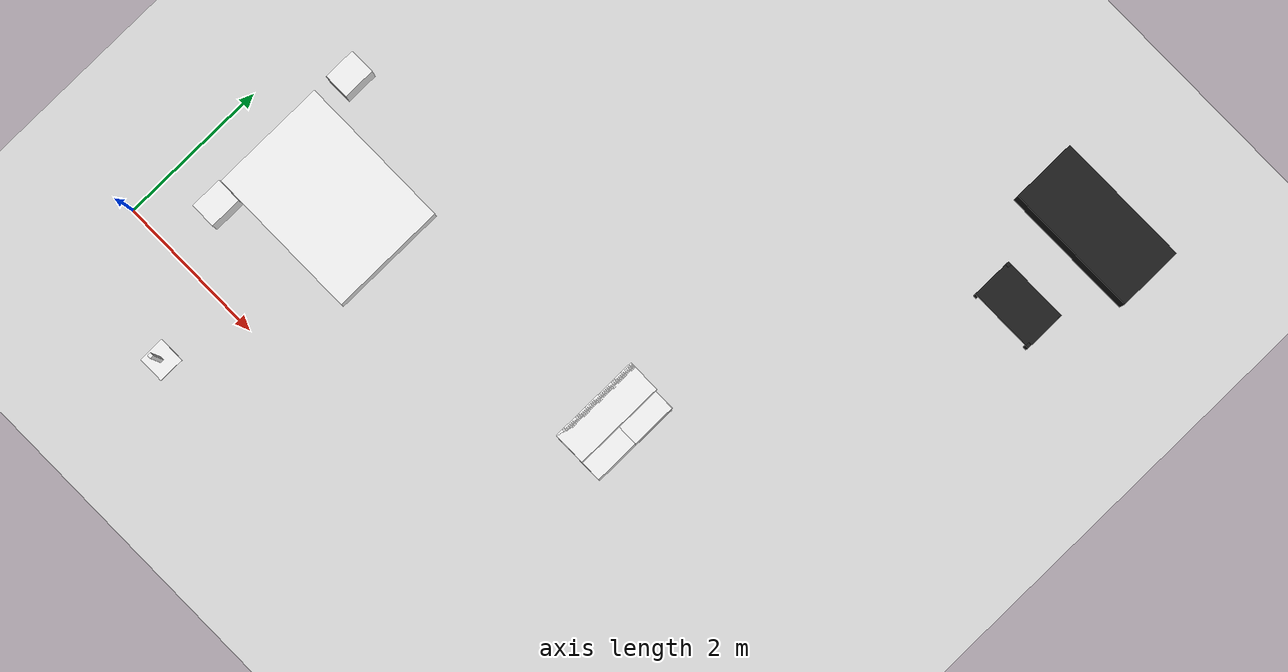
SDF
<sdf version="1.6">
 <world name="rgo2015">
  <light name="sun" type="directional">
   <direction>0.5 0.1 -0.9</direction>
   <pose>0 0 10 0 0 0</pose>
   <specular>0.2 0.2 0.2 1</specular>
   <diffuse>0.8 0.8 0.8 1</diffuse>
   <attenuation>
    <range>1000</range>
    <quadratic>0.001</quadratic>
    <constant>0.9</constant>
    <linear>0.01</linear>
   </attenuation>
  </light>
  <model name="initial_pose_door_A" type="waypoint"><static>true</static></model>
  <model name="initial_pose_door_B" type="waypoint">
   <pose>2.0 8.9 0 0 0 -1.57</pose>
   <static>true</static>
  </model>
  <model name="initial_pose" type="waypoint"><static>true</static></model>
  <model name="entry_point" type="waypoint"><pose>1.897 4.295 0 0 0 0</pose><static>true</static></model>
  <model name="exit" type="waypoint"><pose>-1.48 -0.031 0 0 0 3.1415</pose><static>true</static></model>
  <model name="rips1" type="waypoint"><pose>4.0 0.5 0 0 0 -1.57</pose><static>true</static></model>
  <model name="rips2" type="waypoint"><pose>4.0 2.5 0 0 0 -1.57</pose><static>true</static></model>
  <model name="exit_1_rips" type="waypoint"><pose>2.0 10.5 0 0 0 1.57</pose><static>true</static></model>
  <model name="exit_2_rips" type="waypoint"><pose>2.0 8.0 0 0 0 1.57</pose><static>true</static></model>
  <model name="exit_3_rips" type="waypoint"><pose>3.0 3.0 0 0 0 1.57</pose><static>true</static></model>
  <model name="exit_1_A" type="waypoint"><pose>-1.0 0.0 0 0 0 3.14</pose><static>true</static></model>
  <model name="exit_2_A" type="waypoint"><pose>1.0 0.0 0 0 0 3.14</pose><static>true</static></model>
  <model name="exit_3_A" type="waypoint"><pose>1.0 0.0 0 0 0 3.14</pose><static>true</static></model>
  <model name="manipulation_init_pose" type="waypoint">
   <pose>2.0 6.5 0 0 0 3.14</pose>
   <static>true</static>
  </model>
  <model name="person_rec_learning" type="waypoint">
   <pose>7.069 1.045 0 0 0 0.0</pose>
   <static>true</static>
  </model>
  <model name="person_rec_living_room_1" type="waypoint">
   <pose>6.304 0.607 0 0 0 -2.719</pose>
   <static>true</static>
  </model>
  <model name="person_rec_living_room_2" type="waypoint">
   <pose>4.041 1.935 0 0 0 -1.585</pose>
   <static>true</static>
  </model>
  <model name="person_rec_living_room_3" type="waypoint">
   <pose>1.801 0.151 0 0 0 -0.11</pose>
   <static>true</static>
  </model>
  <model name="wakemeup_bedside_1" type="waypoint">
   <pose>1.771 0.244 0 0 0 2.27</pose>
   <static>true</static>
  </model>
  <model name="wakemeup_bedside_2" type="waypoint">
   <pose>2.749 0.333 0 0 0 2.48</pose>
   <static>true</static>
  </model>
  <model name="wakemeup_bedside_3" type="waypoint">
   <pose>3.509 1.065 0 0 0 3.006</pose>
   <static>true</static>
  </model>
  <model name="wakemeup_bedside_4" type="waypoint">
   <pose>3.364 2.344 0 0 0 -2.919</pose>
   <static>true</static>
  </model>
  <model name="wakemeup_kitchen_table" type="waypoint">
   <pose>3.313 5.155 0 0 0 1.49</pose>
   <static>true</static>
  </model>
  <model name="open_challenge_start" type="waypoint"><pose>6.0 7.0 0 0 0 0.0</pose><static>true</static></model>
  <model name="gpsr_meeting_point" type="waypoint">
   <pose>8.166 5.417 0 0 0 -1.823</pose>
   <static>true</static>
  </model>
  <model name="exit_gpsr" type="waypoint"><pose>2.0 10.5 0 0 0 1.57</pose><static>true</static></model>
  <model name="gpsr_bed" type="waypoint"><pose>3.125 1.892 0 0 0 3.1</pose><static>true</static></model>
  <model name="gpsr_left_bedside_table" type="waypoint">
   <pose>1.374 0.26 0 0 0 2.67</pose>
   <static>true</static>
  </model>
  <model name="gpsr_right_bedside_table" type="waypoint">
   <pose>1.707 3.041 0 0 0 3.136</pose>
   <static>true</static>
  </model>
  <model name="gpsr_small_table" type="waypoint"><pose>4.447 0.13 0 0 0 -1.5</pose><static>true</static></model>
  <model name="gpsr_bartable" type="waypoint"><pose>7.627 0.14 0 0 0 -0.7</pose><static>true</static></model>
  <model name="gpsr_kitchencounter" type="waypoint">
   <pose>7.088 2.22 0 0 0 -3.13</pose>
   <static>true</static>
  </model>
  <model name="gpsr_fridge" type="waypoint"><pose>7.088 2.22 0 0 0 -3.13</pose><static>true</static></model>
  <model name="gpsr_stove" type="waypoint"><pose>7.088 2.22 0 0 0 -3.13</pose><static>true</static></model>
  <model name="gpsr_sink" type="waypoint"><pose>7.088 2.22 0 0 0 -0.313</pose><static>true</static></model>
  <model name="gpsr_cabinet" type="waypoint"><pose>8.137 3.103 0 0 0 0.0</pose><static>true</static></model>
  <model name="gpsr_couchtable" type="waypoint"><pose>8.199 5.609 0 0 0 1.57</pose><static>true</static></model>
  <model name="gpsr_cupboard" type="waypoint"><pose>5.797 7.241 0 0 0 1.35</pose><static>true</static></model>
  <model name="gpsr_right_bookcase" type="waypoint">
   <pose>1.688 7.021 0 0 0 -3.0</pose>
   <static>true</static>
  </model>
  <model name="gpsr_left_bookcase" type="waypoint">
   <pose>1.81 5.929 0 0 0 3.0</pose>
   <static>true</static>
  </model>
  <model name="gpsr_dinnertable" type="waypoint"><pose>1.945 6.51 0 0 0 0.0</pose><static>true</static></model>
  <model name="gpsr_counter" type="waypoint"><pose>3.006 4.653 0 0 0 -3.1</pose><static>true</static></model>
  <model name="gpsr_desk" type="waypoint"><pose>4.681 5.232 0 0 0 -1.58</pose><static>true</static></model>
  <model name="robonurse_initial" type="waypoint">
   <pose>8.262 4.994 0 0 0 1.56</pose>
   <static>true</static>
  </model>
  <model name="robonurse_granny_loc" type="waypoint">
   <pose>6.033 7.437 0 0 0 0.0</pose>
   <static>true</static>
  </model>
  <model name="office" type="room">
   <link name="in">
    <virtual_volume name="in_vv"><geometry><box><size>3.6 3.1 0</size></box></geometry></virtual_volume>
   </link>
   <pose>3.0 6.25 0 0 0 0</pose>
   <static>true</static>
  </model>
  <model name="kitchen" type="room">
   <link name="in">
    <virtual_volume name="in_vv"><geometry><box><size>2.6 3.6 0</size></box></geometry></virtual_volume>
   </link>
   <pose>7.5 1.0 0 0 0 0</pose>
   <static>true</static>
  </model>
  <model name="livingroom" type="room">
   <link name="in">
    <virtual_volume name="in_vv"><geometry><box><size>-2.6 -4.6 0</size></box></geometry></virtual_volume>
   </link>
   <pose>7.5 5.5 0 0 0 0</pose>
   <static>true</static>
  </model>
  <model name="bedroom" type="room">
   <link name="in">
    <virtual_volume name="in_vv"><geometry><box><size>3.6 2.4 0</size></box></geometry></virtual_volume>
   </link>
   <pose>3.0 2.0 0 0 0 0</pose>
   <static>true</static>
  </model>
  <model name="hall" type="room">
   <link name="in">
    <virtual_volume name="in_vv"><geometry><box><size>3.6 1.6 0</size></box></geometry></virtual_volume>
   </link>
   <pose>3.0 0.0 0 0 0 0</pose>
   <static>true</static>
  </model>
  <include><name>floor</name><uri>model://ground_plane</uri></include>
  <include><pose>1.555 1.775 0 0 0 0</pose><name>bed</name><uri>model://rgo2015/bed</uri></include>
  <include>
   <pose>0.695 0.7775 0 0 0 0</pose>
   <name>left_bedside_table</name>
   <uri>model://rgo2015/bedstand</uri>
  </include>
  <include>
   <pose>0.695 2.9775 0 0 0 0</pose>
   <name>right_bedside_table</name>
   <uri>model://rgo2015/bedstand</uri>
  </include>
  <include><pose>1.525 -1.0 0 0 0 0</pose><name>coathanger</name><uri>model://rgo2015/coathanger</uri></include>
  <include>
   <pose>5.87 2.3425 0 0 0 0</pose>
   <name>kitchencounter</name>
   <uri>model://rgo2015/kitchen_counter</uri>
  </include>
  <include><pose>5.87 2.6425 0 0 0 0</pose><name>fridge</name><uri>model://rgo2015/fridge</uri></include>
  <include>
   <pose>8.2 6.755 0 0 0 1.57</pose>
   <name>couchtable</name>
   <uri>model://rgo2015/couch_table</uri>
  </include>
  <include><pose>8.17 8.0675 0 0 0 -1.57</pose><name>couch</name><uri>model://rgo2015/couch</uri></include>
  <physics type="ode">
   <real_time_update_rate>333.0</real_time_update_rate>
   <max_step_size>0.003</max_step_size>
   <ode><constraints><cfm>0.0001</cfm></constraints><solver><type>quick</type><iters>100</iters></solver></ode>
  </physics>
 </world>
</sdf>

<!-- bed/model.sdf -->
<sdf version="1.6">
  <model name="rgo2015/bed">
    <link name="1_link">
      <collision name="1_col">
        <geometry>
          <box>
            <size>2.06 1.55 0.45</size>
          </box>
        </geometry>
      </collision>
      <visual name="1_vis">
        <geometry>
          <box>
            <size>2.06 1.55 0.45</size>
          </box>
        </geometry>
        <material>
          <ambient>0.9 0.9 0.9 1</ambient>
        </material>
      </visual>
      <pose>0.0 0.0 0.225 0 0 0</pose>
    </link>
    <static>true</static>
  </model>
</sdf>

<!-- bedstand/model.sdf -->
<sdf version="1.6">
  <model name="rgo2015/bedstand">
    <link name="1_link">
      <collision name="1_col">
        <geometry>
          <box>
            <size>0.34 0.435 0.63</size>
          </box>
        </geometry>
      </collision>
      <visual name="1_vis">
        <geometry>
          <box>
            <size>0.34 0.435 0.63</size>
          </box>
        </geometry>
        <material>
          <ambient>0.9 0.9 0.9 1</ambient>
        </material>
      </visual>
      <pose>0.0 0.0 0.315 0 0 0</pose>
    </link>
    <static>true</static>
  </model>
</sdf>

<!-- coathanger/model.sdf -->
<sdf version="1.6">
  <model name="rgo2015/coathanger">
    <link name="1_link">
      <collision name="1_col">
        <geometry>
          <box>
            <size>0.35 0.35 0.055</size>
          </box>
        </geometry>
      </collision>
      <visual name="1_vis">
        <geometry>
          <box>
            <size>0.35 0.35 0.055</size>
          </box>
        </geometry>
        <material>
          <ambient>0.9 0.9 0.9 1</ambient>
        </material>
      </visual>
      <pose>0 0 0.0275 0 0 0</pose>
    </link>
    <link name="2_link">
      <collision name="2_col">
        <geometry>
          <box>
            <size>0.05 0.05 1.29</size>
          </box>
        </geometry>
      </collision>
      <visual name="2_vis">
        <geometry>
          <box>
            <size>0.05 0.05 1.29</size>
          </box>
        </geometry>
        <material>
          <ambient>0.9 0.9 0.9 1</ambient>
        </material>
      </visual>
      <pose>0 0 0.645 0 0 0</pose>
    </link>
    <static>true</static>
  </model>
</sdf>

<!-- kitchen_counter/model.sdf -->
<sdf version="1.6">
  <model name="rgo2015/kitchen_counter">
    <link name="1_link">
      <collision name="1_col">
        <geometry>
          <box>
            <size>0.69 1.205 1.02</size>
          </box>
        </geometry>
      </collision>
      <visual name="1_vis">
        <geometry>
          <box>
            <size>0.69 1.205 1.02</size>
          </box>
        </geometry>
        <material>
          <ambient>0.9 0.9 0.9 1</ambient>
        </material>
      </visual>
      <pose>0.0 0.0 0.51 0 0 0</pose>
    </link>
    <link name="2_link">
      <collision name="2_col">
        <geometry>
          <box>
            <size>0.08 1.205 2.01</size>
          </box>
        </geometry>
      </collision>
      <visual name="2_vis">
        <geometry>
          <box>
            <size>0.08 1.205 2.01</size>
          </box>
        </geometry>
        <material>
          <ambient>0.9 0.9 0.9 1</ambient>
        </material>
      </visual>
      <pose>-0.305 0.0 1.005 0 0 0</pose>
    </link>
    <link name="3_link">
      <collision name="3_col">
        <geometry>
          <box>
            <size>0.43 1.205 0.48</size>
          </box>
        </geometry>
      </collision>
      <visual name="3_vis">
        <geometry>
          <box>
            <size>0.43 1.205 0.48</size>
          </box>
        </geometry>
        <material>
          <ambient>0.9 0.9 0.9 1</ambient>
        </material>
      </visual>
      <pose>-0.13 0.0 1.77 0 0 0</pose>
    </link>
    <static>true</static>
  </model>
</sdf>

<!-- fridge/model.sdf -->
<sdf version="1.6">
  <model name="rgo2015/fridge">
    <link name="1_link">
      <collision name="1_col">
        <geometry>
          <box>
            <size>0.69 0.6 1.02</size>
          </box>
        </geometry>
      </collision>
      <visual name="1_vis">
        <geometry>
          <box>
            <size>0.69 0.6 1.02</size>
          </box>
        </geometry>
        <material>
          <ambient>0.9 0.9 0.9 1</ambient>
        </material>
      </visual>
      <pose>0.0 0.0 0.51 0 0 0</pose>
    </link>
    <static>true</static>
  </model>
</sdf>

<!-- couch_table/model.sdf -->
<sdf version="1.6">
  <model name="rgo2015/couch_table">
    <link name="1_link">
      <collision name="1_col">
        <geometry>
          <box>
            <size>0.55 0.9 0.05</size>
          </box>
        </geometry>
      </collision>
      <visual name="1_vis">
        <geometry>
          <box>
            <size>0.55 0.9 0.05</size>
          </box>
        </geometry>
        <material>
          <ambient>0.1 0.1 0.1 1</ambient>
        </material>
      </visual>
      <pose>0.0 0.0 0.425 0 0 0</pose>
    </link>
    <link name="2_link">
      <collision name="2_col">
        <geometry>
          <box>
            <size>0.05 0.05 0.45</size>
          </box>
        </geometry>
      </collision>
      <visual name="2_vis">
        <geometry>
          <box>
            <size>0.05 0.05 0.45</size>
          </box>
        </geometry>
        <material>
          <ambient>0.1 0.1 0.1 1</ambient>
        </material>
      </visual>
      <pose>-0.25 -0.425 0.225 0 0 0</pose>
    </link>
    <link name="3_link">
      <collision name="3_col">
        <geometry>
          <box>
            <size>0.05 0.05 0.45</size>
          </box>
        </geometry>
      </collision>
      <visual name="3_vis">
        <geometry>
          <box>
            <size>0.05 0.05 0.45</size>
          </box>
        </geometry>
        <material>
          <ambient>0.1 0.1 0.1 1</ambient>
        </material>
      </visual>
      <pose>-0.25 0.425 0.225 0 0 0</pose>
    </link>
    <link name="4_link">
      <collision name="4_col">
        <geometry>
          <box>
            <size>0.05 0.05 0.45</size>
          </box>
        </geometry>
      </collision>
      <visual name="4_vis">
        <geometry>
          <box>
            <size>0.05 0.05 0.45</size>
          </box>
        </geometry>
        <material>
          <ambient>0.1 0.1 0.1 1</ambient>
        </material>
      </visual>
      <pose>0.25 -0.425 0.225 0 0 0</pose>
    </link>
    <link name="5_link">
      <collision name="5_col">
        <geometry>
          <box>
            <size>0.05 0.05 0.45</size>
          </box>
        </geometry>
      </collision>
      <visual name="5_vis">
        <geometry>
          <box>
            <size>0.05 0.05 0.45</size>
          </box>
        </geometry>
        <material>
          <ambient>0.1 0.1 0.1 1</ambient>
        </material>
      </visual>
      <pose>0.25 0.425 0.225 0 0 0</pose>
    </link>
    <static>true</static>
  </model>
</sdf>

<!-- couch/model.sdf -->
<sdf version="1.6">
  <model name="rgo2015/couch">
    <link name="1_link">
      <collision name="1_col">
        <geometry>
          <box>
            <size>0.865 1.8 0.67</size>
          </box>
        </geometry>
      </collision>
      <visual name="1_vis">
        <geometry>
          <box>
            <size>0.865 1.8 0.67</size>
          </box>
        </geometry>
        <material>
          <ambient>0.1 0.1 0.1 1</ambient>
        </material>
      </visual>
      <pose>0.0 0.0 0.335 0 0 0</pose>
    </link>
    <static>true</static>
  </model>
</sdf>
